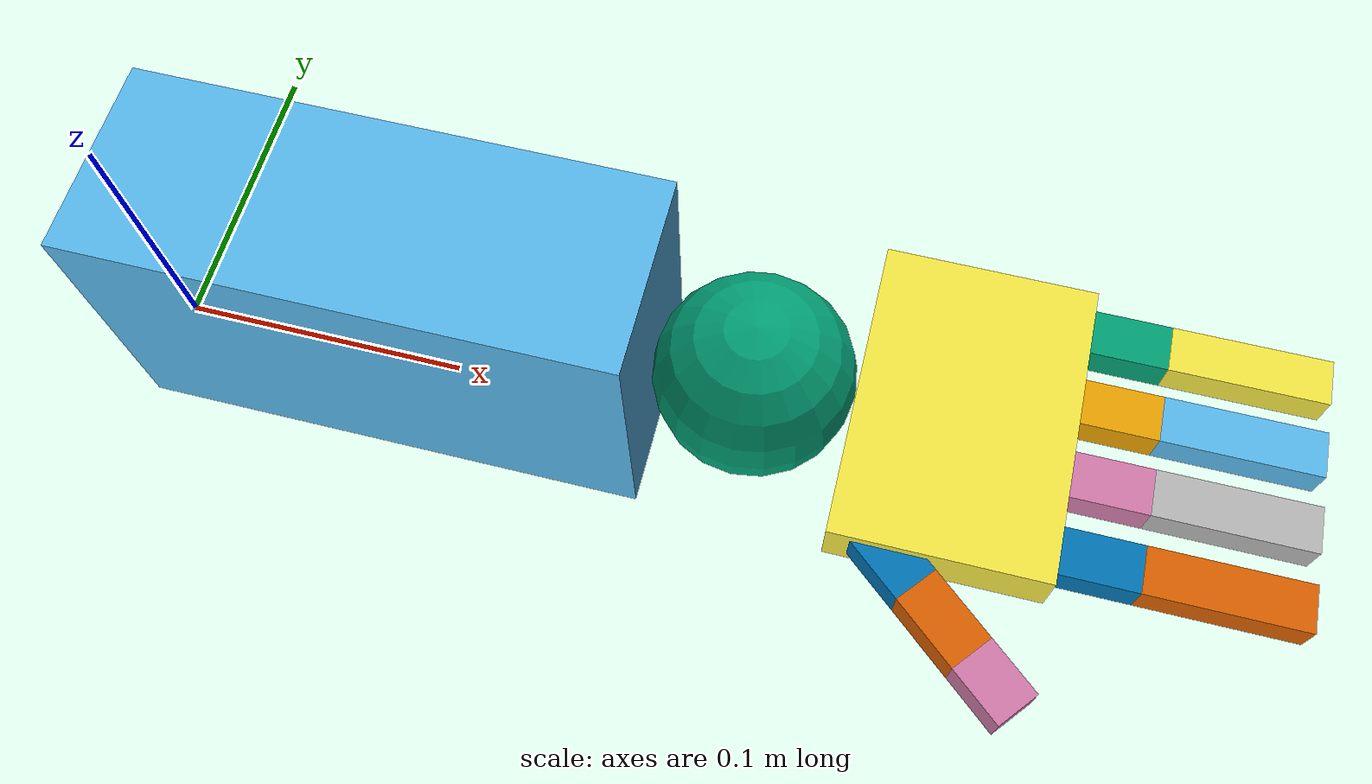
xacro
<?xml version="1.0"?>
<robot xmlns:xacro="http://www.ros.org/wiki/xacro" name="hand">

<xacro:include filename="useful_tags.xacro" />

  <!-- ===== LINKS (base & palm unchanged) ===== -->
  <link name="world" />

  <xacro:property name="base_length" value="0.174" />
  <xacro:property name="base_width" value="0.065" />
  <xacro:property name="base_depth" value="0.101" />

  <link name="base_link">
    <visual>
        <origin xyz="${base_length/2} 0 0" rpy="0 0 0"/>
        <geometry><box size="${base_length} ${base_width} ${base_depth}"/></geometry>
    </visual>
    <collision>
        <origin xyz="${base_length/2} 0 0" rpy="0 0 0"/>
        <geometry><box size="${base_length} ${base_width} ${base_depth}"/></geometry>
    </collision>
    <xacro:inertial_box mass="1.0" x="${base_length}" y="${base_width}" z="${base_depth}">
        <origin xyz="${base_length/2} 0 0" rpy="0 0 0"/>
    </xacro:inertial_box>
  </link>

  <xacro:property name="wrist_radius" value="${base_width/2}" />

    <link name="wrist_link">
    <visual>
        <origin xyz="${wrist_radius} 0 0" rpy="0 0 0"/>
        <geometry><sphere radius="${wrist_radius}"/></geometry>
    </visual>
    <collision>
        <origin xyz="${wrist_radius} 0 0" rpy="0 0 0"/>
        <geometry><sphere radius="${wrist_radius}"/></geometry>
    </collision>
    <xacro:inertial_sphere mass="0.2" radius="${wrist_radius}">
        <origin xyz="${wrist_radius} 0 0" rpy="0 0 0"/>
    </xacro:inertial_sphere>
  </link>

  <xacro:property name="palm_length" value="0.068" />
  <xacro:property name="palm_width" value="0.098" />
  <xacro:property name="palm_depth" value="0.019" />

  <link name="palm_link">
    <visual>
        <origin xyz="${palm_length/2} 0 0" rpy="0 0 0"/>
        <geometry><box size="${palm_length} ${palm_width} ${palm_depth}"/></geometry>
    </visual>
    <collision>
        <origin xyz="${palm_length/2} 0 0" rpy="0 0 0"/>
        <geometry><box size="${palm_length} ${palm_width} ${palm_depth}"/></geometry>
    </collision>
    <xacro:inertial_box mass="0.2" x="${palm_length}" y="${palm_width}" z="${palm_depth}">
        <origin xyz="${palm_length/2} 0 0" rpy="0 0 0"/>
    </xacro:inertial_box>
  </link>

  <!-- ===== FINGER & THUMB LINKS (all boxes 0.02 x 0.05 x 0.02) ===== -->
  <!-- Index -->

  <xacro:property name="index_proximal_length" value="0.025" />
  <xacro:property name="index_proximal_width" value="0.015" />
  <xacro:property name="index_proximal_depth" value="0.012" />

  <link name="index_proximal_link">
    <visual>
        <origin xyz="${index_proximal_length/2} 0 0" rpy="0 0 0"/>
        <geometry><box size="${index_proximal_length} ${index_proximal_width} ${index_proximal_depth}"/></geometry>
    </visual>
    <collision>
        <origin xyz="${index_proximal_length/2} 0 0" rpy="0 0 0"/>
        <geometry><box size="${index_proximal_length} ${index_proximal_width} ${index_proximal_depth}"/></geometry>
    </collision>
    <xacro:inertial_box mass="0.01" x="${index_proximal_length}" y="${index_proximal_width}" z="${index_proximal_depth}">
        <origin xyz="${index_proximal_length/2} 0 0" rpy="0 0 0"/>
    </xacro:inertial_box>
  </link>

  <xacro:property name="index_middle_length" value="0.05" />
  <xacro:property name="index_middle_width" value="0.015" />
  <xacro:property name="index_middle_depth" value="0.012" />

  <link name="index_middle_link">
    <visual>
        <origin xyz="${index_middle_length/2} 0 0" rpy="0 0 0"/>
        <geometry><box size="${index_middle_length} ${index_middle_width} ${index_middle_depth}"/></geometry>
    </visual>
    <collision>
        <origin xyz="${index_middle_length/2} 0 0" rpy="0 0 0"/>
        <geometry><box size="${index_middle_length} ${index_middle_width} ${index_middle_depth}"/></geometry>
    </collision>
    <xacro:inertial_box mass="0.02" x="${index_middle_length}" y="${index_middle_width}" z="${index_middle_depth}">
        <origin xyz="${index_middle_length/2} 0 0" rpy="0 0 0"/>
    </xacro:inertial_box>
  </link>

  <!-- Middle -->
  <xacro:property name="middle_proximal_length" value="0.025" />
  <xacro:property name="middle_proximal_width" value="0.015" />
  <xacro:property name="middle_proximal_depth" value="0.012" />

  <link name="middle_proximal_link">
    <visual>
        <origin xyz="${middle_proximal_length/2} 0 0" rpy="0 0 0"/>
        <geometry><box size="${middle_proximal_length} ${middle_proximal_width} ${middle_proximal_depth}"/></geometry>
    </visual>
    <collision>
        <origin xyz="${middle_proximal_length/2} 0 0" rpy="0 0 0"/>
        <geometry><box size="${middle_proximal_length} ${middle_proximal_width} ${middle_proximal_depth}"/></geometry>
    </collision>
    <xacro:inertial_box mass="0.01" x="${middle_proximal_length}" y="${middle_proximal_width}" z="${middle_proximal_depth}">
        <origin xyz="${middle_proximal_length/2} 0 0" rpy="0 0 0"/>
    </xacro:inertial_box>
  </link>

  <xacro:property name="middle_middle_length" value="0.05" />
  <xacro:property name="middle_middle_width" value="0.015" />
  <xacro:property name="middle_middle_depth" value="0.012" />

  <link name="middle_middle_link">
    <visual>
        <origin xyz="${middle_middle_length/2} 0 0" rpy="0 0 0"/>
        <geometry><box size="${middle_middle_length} ${middle_middle_width} ${middle_middle_depth}"/></geometry>
    </visual>
    <collision>
        <origin xyz="${middle_middle_length/2} 0 0" rpy="0 0 0"/>
        <geometry><box size="${middle_middle_length} ${middle_middle_width} ${middle_middle_depth}"/></geometry>
    </collision>
    <xacro:inertial_box mass="0.02" x="${middle_middle_length}" y="${middle_middle_width}" z="${middle_middle_depth}">
        <origin xyz="${middle_middle_length/2} 0 0" rpy="0 0 0"/>
    </xacro:inertial_box>
  </link>

  <!-- Ring -->
  <xacro:property name="ring_proximal_length" value="0.025" />
  <xacro:property name="ring_proximal_width" value="0.015" />
  <xacro:property name="ring_proximal_depth" value="0.012" />

  <link name="ring_proximal_link">
    <visual>
        <origin xyz="${ring_proximal_length/2} 0 0" rpy="0 0 0"/>
        <geometry><box size="${ring_proximal_length} ${ring_proximal_width} ${ring_proximal_depth}"/></geometry>
    </visual>
    <collision>
        <origin xyz="${ring_proximal_length/2} 0 0" rpy="0 0 0"/>
        <geometry><box size="${ring_proximal_length} ${ring_proximal_width} ${ring_proximal_depth}"/></geometry>
    </collision>
    <xacro:inertial_box mass="0.01" x="${ring_proximal_length}" y="${ring_proximal_width}" z="${ring_proximal_depth}">
        <origin xyz="${ring_proximal_length/2} 0 0" rpy="0 0 0"/>
    </xacro:inertial_box>
  </link>

  <xacro:property name="ring_middle_length" value="0.05" />
  <xacro:property name="ring_middle_width" value="0.015" />
  <xacro:property name="ring_middle_depth" value="0.012" />

  <link name="ring_middle_link">
    <visual>
        <origin xyz="${ring_middle_length/2} 0 0" rpy="0 0 0"/>
        <geometry><box size="${ring_middle_length} ${ring_middle_width} ${ring_middle_depth}"/></geometry>
    </visual>
    <collision>
        <origin xyz="${ring_middle_length/2} 0 0" rpy="0 0 0"/>
        <geometry><box size="${ring_middle_length} ${ring_middle_width} ${ring_middle_depth}"/></geometry>
    </collision>
    <xacro:inertial_box mass="0.02" x="${ring_middle_length}" y="${ring_middle_width}" z="${ring_middle_depth}">
        <origin xyz="${ring_middle_length/2} 0 0" rpy="0 0 0"/>
    </xacro:inertial_box>
  </link>

  <!-- Little -->
  <xacro:property name="little_proximal_length" value="0.025" />
  <xacro:property name="little_proximal_width" value="0.015" />
  <xacro:property name="little_proximal_depth" value="0.012" />

  <link name="little_proximal_link">
    <visual>
        <origin xyz="${little_proximal_length/2} 0 0" rpy="0 0 0"/>
        <geometry><box size="${little_proximal_length} ${little_proximal_width} ${little_proximal_depth}"/></geometry>
    </visual>
    <collision>
        <origin xyz="${little_proximal_length/2} 0 0" rpy="0 0 0"/>
        <geometry><box size="${little_proximal_length} ${little_proximal_width} ${little_proximal_depth}"/></geometry>
    </collision>
    <xacro:inertial_box mass="0.01" x="${little_proximal_length}" y="${little_proximal_width}" z="${little_proximal_depth}">
        <origin xyz="${little_proximal_length/2} 0 0" rpy="0 0 0"/>
    </xacro:inertial_box>
  </link>

  <xacro:property name="little_middle_length" value="0.05" />
  <xacro:property name="little_middle_width" value="0.015" />
  <xacro:property name="little_middle_depth" value="0.012" />

  <link name="little_middle_link">
    <visual>
        <origin xyz="${little_middle_length/2} 0 0" rpy="0 0 0"/>
        <geometry><box size="${little_middle_length} ${little_middle_width} ${little_middle_depth}"/></geometry>
    </visual>
    <collision>
        <origin xyz="${little_middle_length/2} 0 0" rpy="0 0 0"/>
        <geometry><box size="${little_middle_length} ${little_middle_width} ${little_middle_depth}"/></geometry>
    </collision>
    <xacro:inertial_box mass="0.02" x="${little_middle_length}" y="${little_middle_width}" z="${little_middle_depth}">
        <origin xyz="${little_middle_length/2} 0 0" rpy="0 0 0"/>
    </xacro:inertial_box>
  </link>

  <!-- Thumb -->
  <xacro:property name="thumb_metacarpal_length" value="0.028" />
  <xacro:property name="thumb_metacarpal_width" value="0.015" />
  <xacro:property name="thumb_metacarpal_depth" value="0.012" />

  <link name="thumb_metacarpal_link">
    <visual>
        <origin xyz="${thumb_metacarpal_length/2} 0 0" rpy="0 0 0"/>
        <geometry><box size="${thumb_metacarpal_length} ${thumb_metacarpal_width} ${thumb_metacarpal_depth}"/></geometry>
    </visual>
    <collision>
        <origin xyz="${thumb_metacarpal_length/2} 0 0" rpy="0 0 0"/>
        <geometry><box size="${thumb_metacarpal_length} ${thumb_metacarpal_width} ${thumb_metacarpal_depth}"/></geometry>
    </collision>
    <xacro:inertial_box mass="0.01" x="${thumb_metacarpal_length}" y="${thumb_metacarpal_width}" z="${thumb_metacarpal_depth}">
        <origin xyz="${thumb_metacarpal_length/2} 0 0" rpy="0 0 0"/>
    </xacro:inertial_box>
  </link>

  <xacro:property name="thumb_proximal_length" value="0.025" />
  <xacro:property name="thumb_proximal_width" value="0.015" />
  <xacro:property name="thumb_proximal_depth" value="0.012" />

  <link name="thumb_proximal_link">
    <visual>
        <origin xyz="${thumb_proximal_length/2} 0 0" rpy="0 0 0"/>
        <geometry><box size="${thumb_proximal_length} ${thumb_proximal_width} ${thumb_proximal_depth}"/></geometry>
    </visual>
    <collision>
        <origin xyz="${thumb_proximal_length/2} 0 0" rpy="0 0 0"/>
        <geometry><box size="${thumb_proximal_length} ${thumb_proximal_width} ${thumb_proximal_depth}"/></geometry>
    </collision>
    <xacro:inertial_box mass="0.01" x="${thumb_proximal_length}" y="${thumb_proximal_width}" z="${thumb_proximal_depth}">
        <origin xyz="${thumb_proximal_length/2} 0 0" rpy="0 0 0"/>
    </xacro:inertial_box>
  </link>

  <xacro:property name="thumb_distal_length" value="0.020" />
  <xacro:property name="thumb_distal_width" value="0.015" />
  <xacro:property name="thumb_distal_depth" value="0.012" />

  <link name="thumb_distal_link">
    <visual>
        <origin xyz="${thumb_distal_length/2} 0 0" rpy="0 0 0"/>
        <geometry><box size="${thumb_distal_length} ${thumb_distal_width} ${thumb_distal_depth}"/></geometry>
    </visual>
    <collision>
        <origin xyz="${thumb_distal_length/2} 0 0" rpy="0 0 0"/>
        <geometry><box size="${thumb_distal_length} ${thumb_distal_width} ${thumb_distal_depth}"/></geometry>
    </collision>
    <xacro:inertial_box mass="0.01" x="${thumb_distal_length}" y="${thumb_distal_width}" z="${thumb_distal_depth}">
        <origin xyz="${thumb_distal_length/2} 0 0" rpy="0 0 0"/>
    </xacro:inertial_box>
  </link>

  <!-- ===== JOINTS ===== -->
  <!-- World → Base -->
  <joint name="joint_world_to_base" type="fixed">
        <origin xyz="0 0 ${base_depth/2}" rpy="0 0 0"/>
        <parent link="world"/>
        <child link="base_link"/>
    </joint>

  <!-- Base → Wrist -->
  <joint name="joint_base_to_wrist" type="fixed">
    <parent link="base_link"/>
    <child  link="wrist_link"/>
    <origin xyz="${base_length} 0 0" rpy="0 0 0"/>
  </joint>

  <!-- Wrist → Palm -->
  <joint name="joint_wrist_to_palm" type="revolute">
    <parent link="wrist_link"/>
    <child  link="palm_link"/>
    <origin xyz="${wrist_radius*2} 0 0" rpy="0 0 0"/>
    <axis xyz="0 1 0"/>
    <limit lower="-1.57" upper="1.57" effort="5" velocity="5"/>
  </joint>

  <!-- MCP X and Y positions for each finger relative to palm_link -->
  <xacro:property name="mcp_x" value="${palm_length}" />

  <xacro:property name="finger_width" value="${index_proximal_length}" />
  <xacro:property name="spacing_area" value="${palm_width - finger_width * 4}"/>
  <xacro:property name="d" value="${spacing_area / 5}"/>

  <xacro:property name="index_mcp_y" value="${-palm_width / 2 + d + finger_width / 2}" />
  <xacro:property name="middle_mcp_y" value="${-palm_width / 2 + d*2 + finger_width*1.5}" />
  <xacro:property name="ring_mcp_y" value="${-palm_width / 2 + d*3 + finger_width*2.5}" />
  <xacro:property name="little_mcp_y" value="${-palm_width / 2 + d*4 + finger_width*3.5}" />

  <!-- Index -->
  <joint name="joint_index_mcp" type="revolute">
    <parent link="palm_link"/><child link="index_proximal_link"/>
    <origin xyz="${mcp_x} ${index_mcp_y} 0.0" rpy="0 0 0"/><axis xyz="0 1 0"/>
    <limit lower="0.0" upper="1.57" effort="3" velocity="5"/>
  </joint>
  <joint name="joint_index_pip" type="revolute">
    <parent link="index_proximal_link"/><child link="index_middle_link"/>
    <origin xyz="${index_proximal_length} 0 0" rpy="0 0 0"/><axis xyz="0 1 0"/>
    <limit lower="0.0" upper="1.57" effort="2" velocity="5"/>
  </joint>

  <!-- Middle -->
  <joint name="joint_middle_mcp" type="revolute">
    <parent link="palm_link"/><child link="middle_proximal_link"/>
    <origin xyz="${mcp_x} ${middle_mcp_y} 0.0" rpy="0 0 0"/><axis xyz="0 1 0"/>
    <limit lower="0.0" upper="1.57" effort="3" velocity="5"/>
  </joint>
  <joint name="joint_middle_pip" type="revolute">
    <parent link="middle_proximal_link"/><child link="middle_middle_link"/>
    <origin xyz="${middle_proximal_length} 0 0" rpy="0 0 0"/><axis xyz="0 1 0"/>
    <limit lower="0.0" upper="1.57" effort="2" velocity="5"/>
  </joint>

  <!-- Ring -->
  <joint name="joint_ring_mcp" type="revolute">
    <parent link="palm_link"/><child link="ring_proximal_link"/>
    <origin xyz="${mcp_x} ${ring_mcp_y} 0.0" rpy="0 0 0"/><axis xyz="0 1 0"/>
    <limit lower="0.0" upper="1.57" effort="3" velocity="5"/>
  </joint>
  <joint name="joint_ring_pip" type="revolute">
    <parent link="ring_proximal_link"/><child link="ring_middle_link"/>
    <origin xyz="${ring_proximal_length} 0 0" rpy="0 0 0"/><axis xyz="0 1 0"/>
    <limit lower="0.0" upper="1.57" effort="2" velocity="5"/>
  </joint>

  <!-- Little -->
  <joint name="joint_little_mcp" type="revolute">
    <parent link="palm_link"/><child link="little_proximal_link"/>
    <origin xyz="${mcp_x} ${little_mcp_y} 0.0" rpy="0 0 0"/><axis xyz="0 1 0"/>
    <limit lower="0.0" upper="1.57" effort="3" velocity="5"/>
  </joint>
  <joint name="joint_little_pip" type="revolute">
    <parent link="little_proximal_link"/><child link="little_middle_link"/>
    <origin xyz="${little_proximal_length} 0 0" rpy="0 0 0"/><axis xyz="0 1 0"/>
    <limit lower="0.0" upper="1.57" effort="2" velocity="5"/>
  </joint>

  <!-- Thumb (diagonal) -->
  <joint name="joint_thumb_cmc" type="revolute">
    <parent link="palm_link"/><child link="thumb_metacarpal_link"/>
    <origin xyz="${thumb_metacarpal_width/2} ${-(palm_width/2.5)} 0.00" rpy="0 0 -0.70"/><axis xyz="0 1 0"/>
    <limit lower="-0.40" upper="1.20" effort="3" velocity="5"/>
  </joint>
  <joint name="joint_thumb_mcp" type="revolute">
    <parent link="thumb_metacarpal_link"/><child link="thumb_proximal_link"/>
    <origin xyz="${thumb_metacarpal_length} 0 0" rpy="0 0 0"/><axis xyz="0 1 0"/>
    <limit lower="0.0" upper="1.57" effort="2" velocity="5"/>
  </joint>
  <joint name="joint_thumb_ip" type="revolute">
    <parent link="thumb_proximal_link"/><child link="thumb_distal_link"/>
    <origin xyz="${thumb_proximal_length} 0 0" rpy="0 0 0"/><axis xyz="0 1 0"/>
    <limit lower="0.0" upper="1.57" effort="2" velocity="5"/>
  </joint>

</robot>

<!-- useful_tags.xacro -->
<robot xmlns:xacro="http://www.ros.org/wiki/xacro" >

    <material name="white">

        <color rgba="1 1 1 1"/>

    </material>

    <material name="orange">

        <color rgba="1 0.3 0.1 1"/>

    </material>

    <material name="blue">

        <color rgba="0.2 0.2 1 1"/>

    </material>

    <material name="green">

        <color rgba="0.2 1 0.2 1"/>

    </material>

    <!-- some standard inertial calculations https://en.wikipedia.org/wiki/List_of_moments_of_inertia -->

    <xacro:macro name="inertial_sphere" params="mass radius *origin">

        <inertial>

            <xacro:insert_block name="origin"/>

            <mass value="${mass}" />

            <inertia ixx="${(2/5) * mass * (radius*radius)}" ixy="0.0" ixz="0.0"

                    iyy="${(2/5) * mass * (radius*radius)}" iyz="0.0"

                    izz="${(2/5) * mass * (radius*radius)}" />

        </inertial>

    </xacro:macro>

    <xacro:macro name="inertial_box" params="mass x y z *origin">

        <inertial>

            <xacro:insert_block name="origin"/>

            <mass value="${mass}" />

            <inertia ixx="${(1/12) * mass * (y*y+z*z)}" ixy="0.0" ixz="0.0"

                    iyy="${(1/12) * mass * (x*x+z*z)}" iyz="0.0"

                    izz="${(1/12) * mass * (x*x+y*y)}" />

        </inertial>

    </xacro:macro>

    <xacro:macro name="inertial_cylinder" params="mass length radius *origin">

        <inertial>

            <xacro:insert_block name="origin"/>

            <mass value="${mass}" />

            <inertia ixx="${(1/12) * mass * (3*radius*radius + length*length)}" ixy="0.0" ixz="0.0"

                    iyy="${(1/12) * mass * (3*radius*radius + length*length)}" iyz="0.0"

                    izz="${(1/2) * mass * (radius*radius)}" />

        </inertial>

    </xacro:macro>

</robot>
